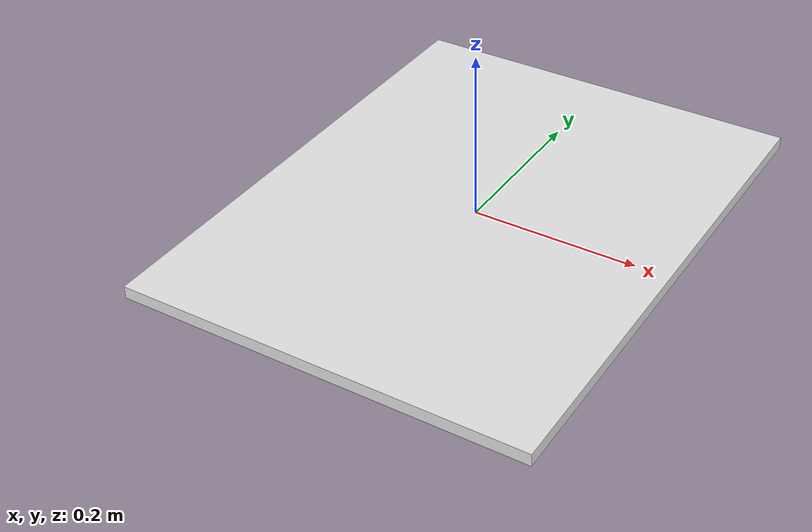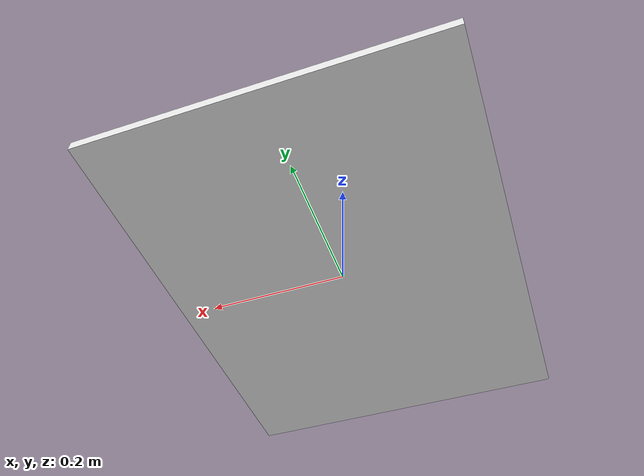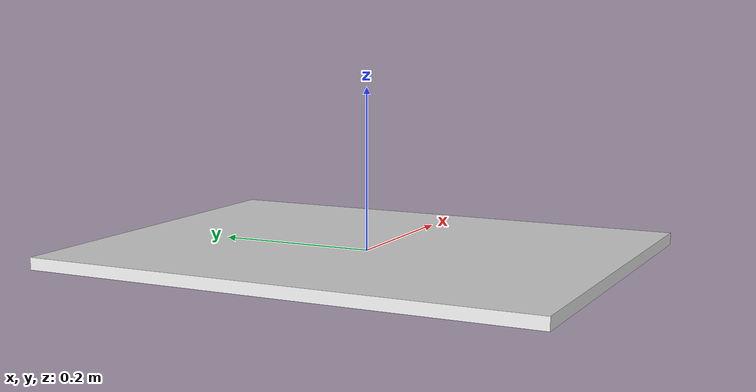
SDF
<?xml version="1.0"?>
<sdf version="1.7">

  <model name="table_top">
    <link name="table_top_link">
      <inertial>
        <mass>18.70</mass>
        <inertia>
          <ixx>0.79</ixx>
          <ixy>0</ixy>
          <ixz>0</ixz>
          <iyy>0.53</iyy>
          <iyz>0</iyz>
          <izz>1.2</izz>
        </inertia>
      </inertial>
      <visual name="bottom">
        <pose>0.0 0.0 0.0 0 0 0</pose>
        <geometry>
          <box>
            <size>0.49 0.63 0.015</size>
          </box>
        </geometry>
        <material>
          <diffuse>0.9 0.9 0.9 1.0</diffuse>
        </material>
      </visual>
      <collision name="bottom">
        <pose>0.0 0.0 0.0 0 0 0</pose>
        <geometry>
          <box>
            <size>0.49 0.63 0.015</size>
          </box>
        </geometry>
        <drake:proximity_properties>
          <drake:compliant_hydroelastic />
          <drake:hydroelastic_modulus>1.0e6</drake:hydroelastic_modulus>
          <drake:mu_dynamic>0.001</drake:mu_dynamic>
          <drake:mu_static>0.001</drake:mu_static>
        </drake:proximity_properties>
      </collision>
    </link>
    <frame name="table_top_center">
      <pose relative_to="table_top_link">0 0 0.00075 0 0 0</pose>
    </frame>
  </model>
</sdf>
